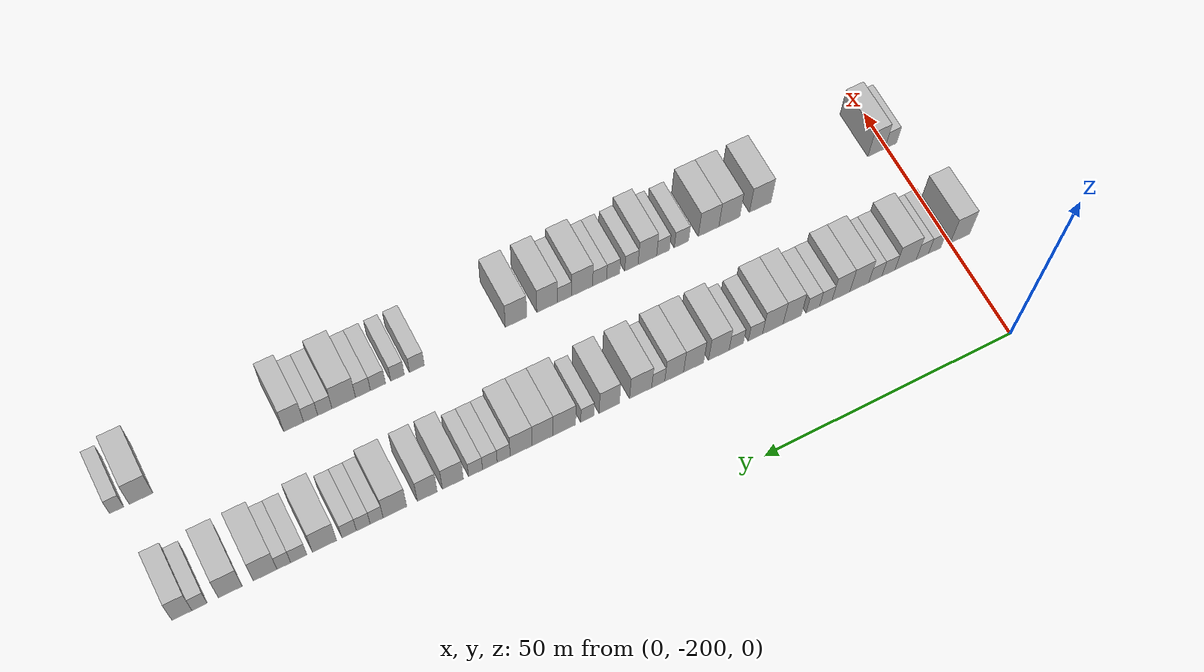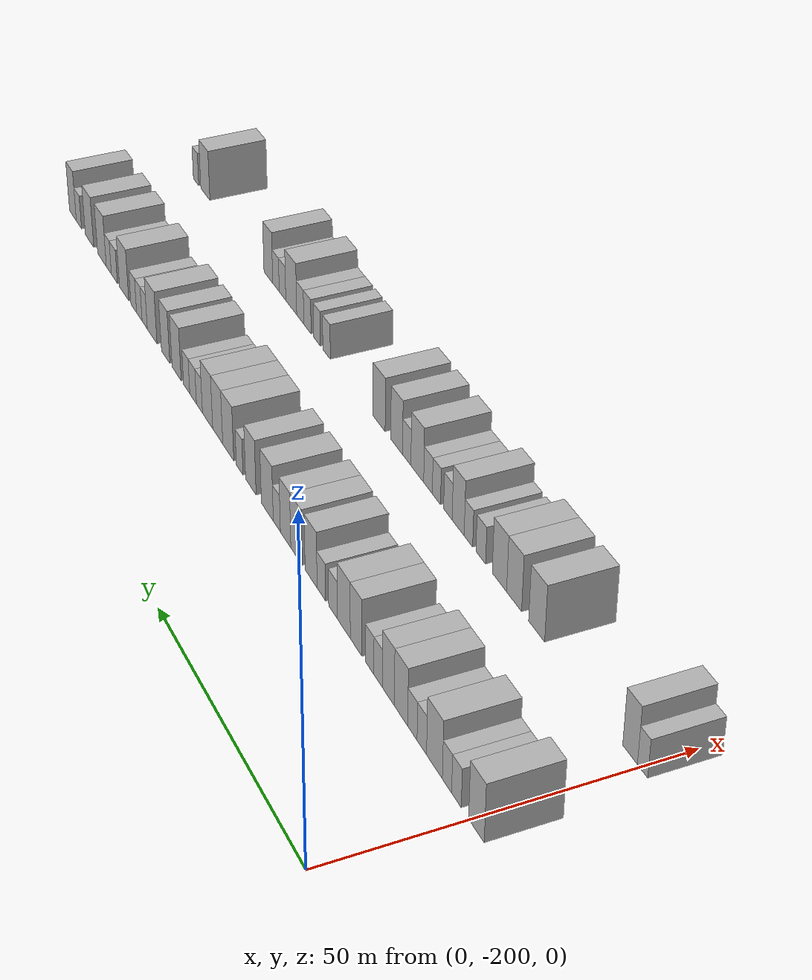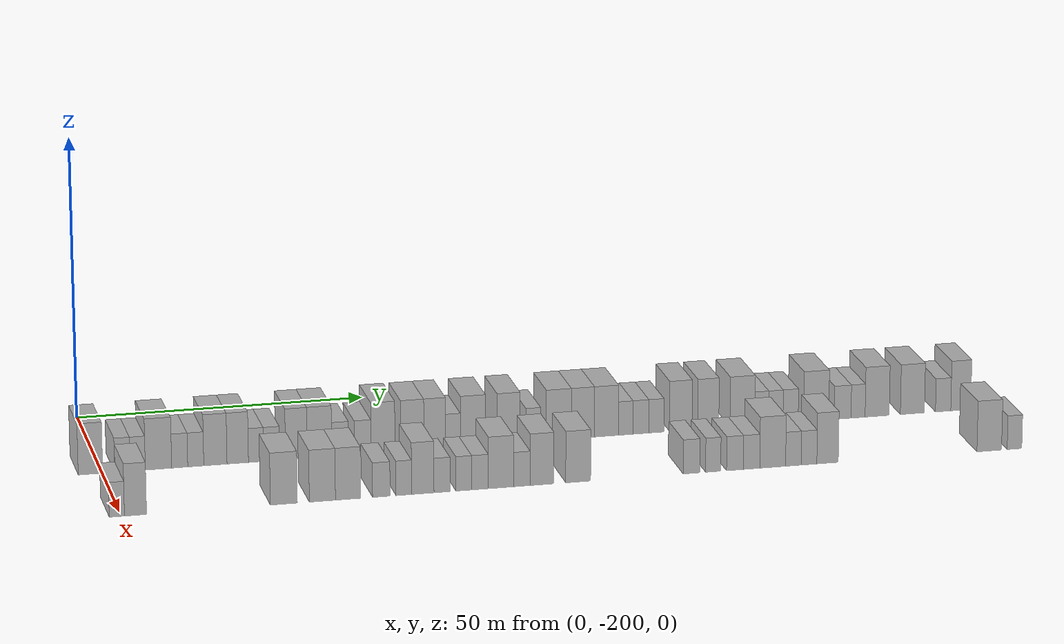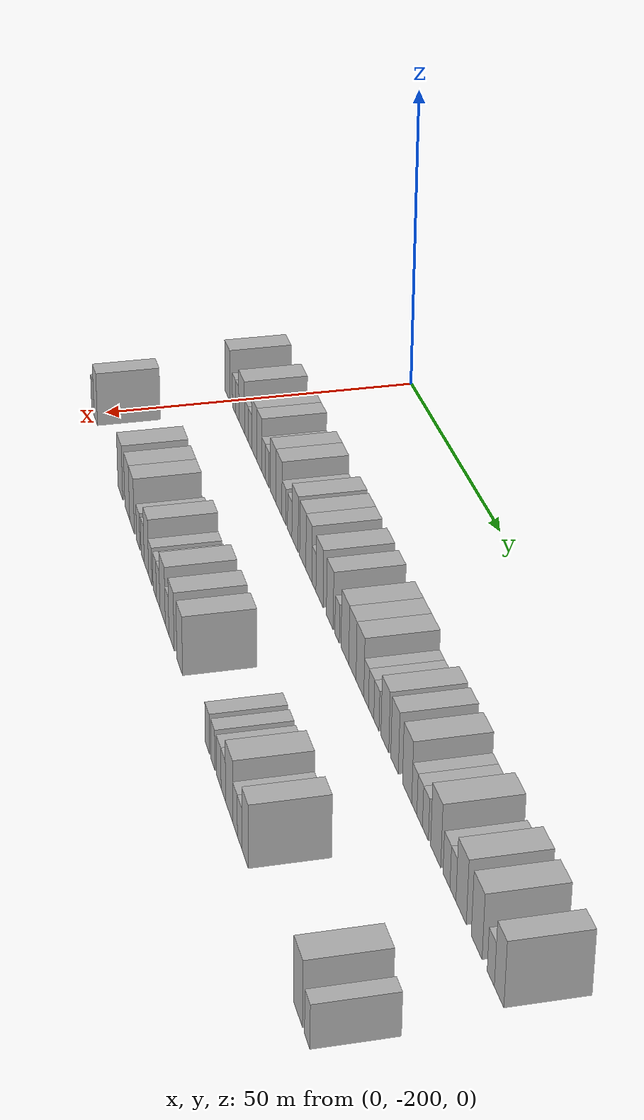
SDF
<sdf version="1.6">
 <world name="default">
  <model name="building_1">
   <static>1</static>
   <pose>25.0000 -201.9423 0 0.000000 0.000000 0.000000</pose>
   <link name="link">
    <pose>0 0 4.50 0 0 0</pose>
    <collision name="collision"><geometry><box><size>10.0000 4.1153 9.0000</size></box></geometry></collision>
    <visual name="visual">
     <cast_shadows>0</cast_shadows>
     <geometry><box><size>10.0000 4.1153 9.0000</size></box></geometry>
     <material>
      <script>
       <uri>model://HANNAS_wall/materials/scripts</uri>
       <uri>model://HANNAS_wall/materials/textures</uri>
       <name>vrc/HANNAS_wall</name>
      </script>
     </material>
    </visual>
   </link>
  </model>
  <model name="building_2">
   <static>1</static>
   <pose>25.0000 -196.5770 0 0.000000 0.000000 0.000000</pose>
   <link name="link">
    <pose>0 0 3.00 0 0 0</pose>
    <collision name="collision"><geometry><box><size>10.0000 2.6154 6.0000</size></box></geometry></collision>
    <visual name="visual">
     <cast_shadows>0</cast_shadows>
     <geometry><box><size>10.0000 2.6154 6.0000</size></box></geometry>
     <material>
      <script>
       <uri>model://HANNAS_wall/materials/scripts</uri>
       <uri>model://HANNAS_wall/materials/textures</uri>
       <name>vrc/HANNAS_wall</name>
      </script>
     </material>
    </visual>
   </link>
  </model>
  <model name="building_3">
   <static>1</static>
   <pose>25.0000 -193.9902 0 0.000000 0.000000 0.000000</pose>
   <link name="link">
    <pose>0 0 3.00 0 0 0</pose>
    <collision name="collision"><geometry><box><size>10.0000 2.5582 6.0000</size></box></geometry></collision>
    <visual name="visual">
     <cast_shadows>0</cast_shadows>
     <geometry><box><size>10.0000 2.5582 6.0000</size></box></geometry>
     <material>
      <script>
       <uri>model://HANNAS_wall/materials/scripts</uri>
       <uri>model://HANNAS_wall/materials/textures</uri>
       <name>vrc/HANNAS_wall</name>
      </script>
     </material>
    </visual>
   </link>
  </model>
  <model name="building_4">
   <static>1</static>
   <pose>25.0000 -190.4837 0 0.000000 0.000000 0.000000</pose>
   <link name="link">
    <pose>0 0 4.50 0 0 0</pose>
    <collision name="collision"><geometry><box><size>10.0000 4.4548 9.0000</size></box></geometry></collision>
    <visual name="visual">
     <cast_shadows>0</cast_shadows>
     <geometry><box><size>10.0000 4.4548 9.0000</size></box></geometry>
     <material>
      <script>
       <uri>model://HANNAS_wall/materials/scripts</uri>
       <uri>model://HANNAS_wall/materials/textures</uri>
       <name>vrc/HANNAS_wall</name>
      </script>
     </material>
    </visual>
   </link>
  </model>
  <model name="building_5">
   <static>1</static>
   <pose>25.0000 -186.8945 0 0.000000 0.000000 0.000000</pose>
   <link name="link">
    <pose>0 0 3.00 0 0 0</pose>
    <collision name="collision"><geometry><box><size>10.0000 2.7236 6.0000</size></box></geometry></collision>
    <visual name="visual">
     <cast_shadows>0</cast_shadows>
     <geometry><box><size>10.0000 2.7236 6.0000</size></box></geometry>
     <material>
      <script>
       <uri>model://HANNAS_wall/materials/scripts</uri>
       <uri>model://HANNAS_wall/materials/textures</uri>
       <name>vrc/HANNAS_wall</name>
      </script>
     </material>
    </visual>
   </link>
  </model>
  <model name="building_6">
   <static>1</static>
   <pose>25.0000 -184.1751 0 0.000000 0.000000 0.000000</pose>
   <link name="link">
    <pose>0 0 3.00 0 0 0</pose>
    <collision name="collision"><geometry><box><size>10.0000 2.7152 6.0000</size></box></geometry></collision>
    <visual name="visual">
     <cast_shadows>0</cast_shadows>
     <geometry><box><size>10.0000 2.7152 6.0000</size></box></geometry>
     <material>
      <script>
       <uri>model://HANNAS_wall/materials/scripts</uri>
       <uri>model://HANNAS_wall/materials/textures</uri>
       <name>vrc/HANNAS_wall</name>
      </script>
     </material>
    </visual>
   </link>
  </model>
  <model name="building_7">
   <static>1</static>
   <pose>25.0000 -180.8436 0 0.000000 0.000000 0.000000</pose>
   <link name="link">
    <pose>0 0 4.50 0 0 0</pose>
    <collision name="collision"><geometry><box><size>10.0000 3.9480 9.0000</size></box></geometry></collision>
    <visual name="visual">
     <cast_shadows>0</cast_shadows>
     <geometry><box><size>10.0000 3.9480 9.0000</size></box></geometry>
     <material>
      <script>
       <uri>model://HANNAS_wall/materials/scripts</uri>
       <uri>model://HANNAS_wall/materials/textures</uri>
       <name>vrc/HANNAS_wall</name>
      </script>
     </material>
    </visual>
   </link>
  </model>
  <model name="building_8">
   <static>1</static>
   <pose>25.0000 -177.0454 0 0.000000 0.000000 0.000000</pose>
   <link name="link">
    <pose>0 0 4.50 0 0 0</pose>
    <collision name="collision"><geometry><box><size>10.0000 3.6483 9.0000</size></box></geometry></collision>
    <visual name="visual">
     <cast_shadows>0</cast_shadows>
     <geometry><box><size>10.0000 3.6483 9.0000</size></box></geometry>
     <material>
      <script>
       <uri>model://HANNAS_wall/materials/scripts</uri>
       <uri>model://HANNAS_wall/materials/textures</uri>
       <name>vrc/HANNAS_wall</name>
      </script>
     </material>
    </visual>
   </link>
  </model>
  <model name="building_9">
   <static>1</static>
   <pose>25.0000 -173.9322 0 0.000000 0.000000 0.000000</pose>
   <link name="link">
    <pose>0 0 3.00 0 0 0</pose>
    <collision name="collision"><geometry><box><size>10.0000 2.5782 6.0000</size></box></geometry></collision>
    <visual name="visual">
     <cast_shadows>0</cast_shadows>
     <geometry><box><size>10.0000 2.5782 6.0000</size></box></geometry>
     <material>
      <script>
       <uri>model://HANNAS_wall/materials/scripts</uri>
       <uri>model://HANNAS_wall/materials/textures</uri>
       <name>vrc/HANNAS_wall</name>
      </script>
     </material>
    </visual>
   </link>
  </model>
  <model name="building_10">
   <static>1</static>
   <pose>25.0000 -171.2739 0 0.000000 0.000000 0.000000</pose>
   <link name="link">
    <pose>0 0 3.00 0 0 0</pose>
    <collision name="collision"><geometry><box><size>10.0000 2.7384 6.0000</size></box></geometry></collision>
    <visual name="visual">
     <cast_shadows>0</cast_shadows>
     <geometry><box><size>10.0000 2.7384 6.0000</size></box></geometry>
     <material>
      <script>
       <uri>model://HANNAS_wall/materials/scripts</uri>
       <uri>model://HANNAS_wall/materials/textures</uri>
       <name>vrc/HANNAS_wall</name>
      </script>
     </material>
    </visual>
   </link>
  </model>
  <model name="building_11">
   <static>1</static>
   <pose>25.0000 -167.0471 0 0.000000 0.000000 0.000000</pose>
   <link name="link">
    <pose>0 0 4.50 0 0 0</pose>
    <collision name="collision"><geometry><box><size>10.0000 3.7153 9.0000</size></box></geometry></collision>
    <visual name="visual">
     <cast_shadows>0</cast_shadows>
     <geometry><box><size>10.0000 3.7153 9.0000</size></box></geometry>
     <material>
      <script>
       <uri>model://HANNAS_wall/materials/scripts</uri>
       <uri>model://HANNAS_wall/materials/textures</uri>
       <name>vrc/HANNAS_wall</name>
      </script>
     </material>
    </visual>
   </link>
  </model>
  <model name="building_12">
   <static>1</static>
   <pose>25.0000 -163.0891 0 0.000000 0.000000 0.000000</pose>
   <link name="link">
    <pose>0 0 4.50 0 0 0</pose>
    <collision name="collision"><geometry><box><size>10.0000 4.2007 9.0000</size></box></geometry></collision>
    <visual name="visual">
     <cast_shadows>0</cast_shadows>
     <geometry><box><size>10.0000 4.2007 9.0000</size></box></geometry>
     <material>
      <script>
       <uri>model://HANNAS_wall/materials/scripts</uri>
       <uri>model://HANNAS_wall/materials/textures</uri>
       <name>vrc/HANNAS_wall</name>
      </script>
     </material>
    </visual>
   </link>
  </model>
  <model name="building_13">
   <static>1</static>
   <pose>25.0000 -159.5519 0 0.000000 0.000000 0.000000</pose>
   <link name="link">
    <pose>0 0 3.00 0 0 0</pose>
    <collision name="collision"><geometry><box><size>10.0000 2.8738 6.0000</size></box></geometry></collision>
    <visual name="visual">
     <cast_shadows>0</cast_shadows>
     <geometry><box><size>10.0000 2.8738 6.0000</size></box></geometry>
     <material>
      <script>
       <uri>model://HANNAS_wall/materials/scripts</uri>
       <uri>model://HANNAS_wall/materials/textures</uri>
       <name>vrc/HANNAS_wall</name>
      </script>
     </material>
    </visual>
   </link>
  </model>
  <model name="building_14">
   <static>1</static>
   <pose>25.0000 -155.6777 0 0.000000 0.000000 0.000000</pose>
   <link name="link">
    <pose>0 0 3.00 0 0 0</pose>
    <collision name="collision"><geometry><box><size>10.0000 2.8745 6.0000</size></box></geometry></collision>
    <visual name="visual">
     <cast_shadows>0</cast_shadows>
     <geometry><box><size>10.0000 2.8745 6.0000</size></box></geometry>
     <material>
      <script>
       <uri>model://HANNAS_wall/materials/scripts</uri>
       <uri>model://HANNAS_wall/materials/textures</uri>
       <name>vrc/HANNAS_wall</name>
      </script>
     </material>
    </visual>
   </link>
  </model>
  <model name="building_15">
   <static>1</static>
   <pose>25.0000 -152.1802 0 0.000000 0.000000 0.000000</pose>
   <link name="link">
    <pose>0 0 4.50 0 0 0</pose>
    <collision name="collision"><geometry><box><size>10.0000 4.1206 9.0000</size></box></geometry></collision>
    <visual name="visual">
     <cast_shadows>0</cast_shadows>
     <geometry><box><size>10.0000 4.1206 9.0000</size></box></geometry>
     <material>
      <script>
       <uri>model://HANNAS_wall/materials/scripts</uri>
       <uri>model://HANNAS_wall/materials/textures</uri>
       <name>vrc/HANNAS_wall</name>
      </script>
     </material>
    </visual>
   </link>
  </model>
  <model name="building_16">
   <static>1</static>
   <pose>25.0000 -147.1209 0 0.000000 0.000000 0.000000</pose>
   <link name="link">
    <pose>0 0 4.50 0 0 0</pose>
    <collision name="collision"><geometry><box><size>10.0000 3.9980 9.0000</size></box></geometry></collision>
    <visual name="visual">
     <cast_shadows>0</cast_shadows>
     <geometry><box><size>10.0000 3.9980 9.0000</size></box></geometry>
     <material>
      <script>
       <uri>model://HANNAS_wall/materials/scripts</uri>
       <uri>model://HANNAS_wall/materials/textures</uri>
       <name>vrc/HANNAS_wall</name>
      </script>
     </material>
    </visual>
   </link>
  </model>
  <model name="building_17">
   <static>1</static>
   <pose>25.0000 -143.2498 0 0.000000 0.000000 0.000000</pose>
   <link name="link">
    <pose>0 0 4.50 0 0 0</pose>
    <collision name="collision"><geometry><box><size>10.0000 3.7441 9.0000</size></box></geometry></collision>
    <visual name="visual">
     <cast_shadows>0</cast_shadows>
     <geometry><box><size>10.0000 3.7441 9.0000</size></box></geometry>
     <material>
      <script>
       <uri>model://HANNAS_wall/materials/scripts</uri>
       <uri>model://HANNAS_wall/materials/textures</uri>
       <name>vrc/HANNAS_wall</name>
      </script>
     </material>
    </visual>
   </link>
  </model>
  <model name="building_18">
   <static>1</static>
   <pose>25.0000 -140.0889 0 0.000000 0.000000 0.000000</pose>
   <link name="link">
    <pose>0 0 3.00 0 0 0</pose>
    <collision name="collision"><geometry><box><size>10.0000 2.5777 6.0000</size></box></geometry></collision>
    <visual name="visual">
     <cast_shadows>0</cast_shadows>
     <geometry><box><size>10.0000 2.5777 6.0000</size></box></geometry>
     <material>
      <script>
       <uri>model://HANNAS_wall/materials/scripts</uri>
       <uri>model://HANNAS_wall/materials/textures</uri>
       <name>vrc/HANNAS_wall</name>
      </script>
     </material>
    </visual>
   </link>
  </model>
  <model name="building_19">
   <static>1</static>
   <pose>25.0000 -136.6142 0 0.000000 0.000000 0.000000</pose>
   <link name="link">
    <pose>0 0 4.50 0 0 0</pose>
    <collision name="collision"><geometry><box><size>10.0000 4.3716 9.0000</size></box></geometry></collision>
    <visual name="visual">
     <cast_shadows>0</cast_shadows>
     <geometry><box><size>10.0000 4.3716 9.0000</size></box></geometry>
     <material>
      <script>
       <uri>model://HANNAS_wall/materials/scripts</uri>
       <uri>model://HANNAS_wall/materials/textures</uri>
       <name>vrc/HANNAS_wall</name>
      </script>
     </material>
    </visual>
   </link>
  </model>
  <model name="building_20">
   <static>1</static>
   <pose>25.0000 -130.4317 0 0.000000 0.000000 0.000000</pose>
   <link name="link">
    <pose>0 0 4.50 0 0 0</pose>
    <collision name="collision"><geometry><box><size>10.0000 3.9935 9.0000</size></box></geometry></collision>
    <visual name="visual">
     <cast_shadows>0</cast_shadows>
     <geometry><box><size>10.0000 3.9935 9.0000</size></box></geometry>
     <material>
      <script>
       <uri>model://HANNAS_wall/materials/scripts</uri>
       <uri>model://HANNAS_wall/materials/textures</uri>
       <name>vrc/HANNAS_wall</name>
      </script>
     </material>
    </visual>
   </link>
  </model>
  <model name="building_21">
   <static>1</static>
   <pose>25.0000 -126.1475 0 0.000000 0.000000 0.000000</pose>
   <link name="link">
    <pose>0 0 3.00 0 0 0</pose>
    <collision name="collision"><geometry><box><size>10.0000 2.5748 6.0000</size></box></geometry></collision>
    <visual name="visual">
     <cast_shadows>0</cast_shadows>
     <geometry><box><size>10.0000 2.5748 6.0000</size></box></geometry>
     <material>
      <script>
       <uri>model://HANNAS_wall/materials/scripts</uri>
       <uri>model://HANNAS_wall/materials/textures</uri>
       <name>vrc/HANNAS_wall</name>
      </script>
     </material>
    </visual>
   </link>
  </model>
  <model name="building_22">
   <static>1</static>
   <pose>25.0000 -121.6800 0 0.000000 0.000000 0.000000</pose>
   <link name="link">
    <pose>0 0 4.50 0 0 0</pose>
    <collision name="collision"><geometry><box><size>10.0000 4.3604 9.0000</size></box></geometry></collision>
    <visual name="visual">
     <cast_shadows>0</cast_shadows>
     <geometry><box><size>10.0000 4.3604 9.0000</size></box></geometry>
     <material>
      <script>
       <uri>model://HANNAS_wall/materials/scripts</uri>
       <uri>model://HANNAS_wall/materials/textures</uri>
       <name>vrc/HANNAS_wall</name>
      </script>
     </material>
    </visual>
   </link>
  </model>
  <model name="building_23">
   <static>1</static>
   <pose>25.0000 -117.4718 0 0.000000 0.000000 0.000000</pose>
   <link name="link">
    <pose>0 0 4.50 0 0 0</pose>
    <collision name="collision"><geometry><box><size>10.0000 4.0561 9.0000</size></box></geometry></collision>
    <visual name="visual">
     <cast_shadows>0</cast_shadows>
     <geometry><box><size>10.0000 4.0561 9.0000</size></box></geometry>
     <material>
      <script>
       <uri>model://HANNAS_wall/materials/scripts</uri>
       <uri>model://HANNAS_wall/materials/textures</uri>
       <name>vrc/HANNAS_wall</name>
      </script>
     </material>
    </visual>
   </link>
  </model>
  <model name="building_24">
   <static>1</static>
   <pose>25.0000 -113.3345 0 0.000000 0.000000 0.000000</pose>
   <link name="link">
    <pose>0 0 4.50 0 0 0</pose>
    <collision name="collision"><geometry><box><size>10.0000 4.2184 9.0000</size></box></geometry></collision>
    <visual name="visual">
     <cast_shadows>0</cast_shadows>
     <geometry><box><size>10.0000 4.2184 9.0000</size></box></geometry>
     <material>
      <script>
       <uri>model://HANNAS_wall/materials/scripts</uri>
       <uri>model://HANNAS_wall/materials/textures</uri>
       <name>vrc/HANNAS_wall</name>
      </script>
     </material>
    </visual>
   </link>
  </model>
  <model name="building_25">
   <static>1</static>
   <pose>25.0000 -109.9702 0 0.000000 0.000000 0.000000</pose>
   <link name="link">
    <pose>0 0 3.00 0 0 0</pose>
    <collision name="collision"><geometry><box><size>10.0000 2.5103 6.0000</size></box></geometry></collision>
    <visual name="visual">
     <cast_shadows>0</cast_shadows>
     <geometry><box><size>10.0000 2.5103 6.0000</size></box></geometry>
     <material>
      <script>
       <uri>model://HANNAS_wall/materials/scripts</uri>
       <uri>model://HANNAS_wall/materials/textures</uri>
       <name>vrc/HANNAS_wall</name>
      </script>
     </material>
    </visual>
   </link>
  </model>
  <model name="building_26">
   <static>1</static>
   <pose>25.0000 -107.3173 0 0.000000 0.000000 0.000000</pose>
   <link name="link">
    <pose>0 0 3.00 0 0 0</pose>
    <collision name="collision"><geometry><box><size>10.0000 2.7954 6.0000</size></box></geometry></collision>
    <visual name="visual">
     <cast_shadows>0</cast_shadows>
     <geometry><box><size>10.0000 2.7954 6.0000</size></box></geometry>
     <material>
      <script>
       <uri>model://HANNAS_wall/materials/scripts</uri>
       <uri>model://HANNAS_wall/materials/textures</uri>
       <name>vrc/HANNAS_wall</name>
      </script>
     </material>
    </visual>
   </link>
  </model>
  <model name="building_27">
   <static>1</static>
   <pose>25.0000 -104.5881 0 0.000000 0.000000 0.000000</pose>
   <link name="link">
    <pose>0 0 3.00 0 0 0</pose>
    <collision name="collision"><geometry><box><size>10.0000 2.6630 6.0000</size></box></geometry></collision>
    <visual name="visual">
     <cast_shadows>0</cast_shadows>
     <geometry><box><size>10.0000 2.6630 6.0000</size></box></geometry>
     <material>
      <script>
       <uri>model://HANNAS_wall/materials/scripts</uri>
       <uri>model://HANNAS_wall/materials/textures</uri>
       <name>vrc/HANNAS_wall</name>
      </script>
     </material>
    </visual>
   </link>
  </model>
  <model name="building_28">
   <static>1</static>
   <pose>25.0000 -100.2743 0 0.000000 0.000000 0.000000</pose>
   <link name="link">
    <pose>0 0 4.50 0 0 0</pose>
    <collision name="collision"><geometry><box><size>10.0000 3.9646 9.0000</size></box></geometry></collision>
    <visual name="visual">
     <cast_shadows>0</cast_shadows>
     <geometry><box><size>10.0000 3.9646 9.0000</size></box></geometry>
     <material>
      <script>
       <uri>model://HANNAS_wall/materials/scripts</uri>
       <uri>model://HANNAS_wall/materials/textures</uri>
       <name>vrc/HANNAS_wall</name>
      </script>
     </material>
    </visual>
   </link>
  </model>
  <model name="building_29">
   <static>1</static>
   <pose>25.0000 -95.4262 0 0.000000 0.000000 0.000000</pose>
   <link name="link">
    <pose>0 0 4.50 0 0 0</pose>
    <collision name="collision"><geometry><box><size>10.0000 3.7315 9.0000</size></box></geometry></collision>
    <visual name="visual">
     <cast_shadows>0</cast_shadows>
     <geometry><box><size>10.0000 3.7315 9.0000</size></box></geometry>
     <material>
      <script>
       <uri>model://HANNAS_wall/materials/scripts</uri>
       <uri>model://HANNAS_wall/materials/textures</uri>
       <name>vrc/HANNAS_wall</name>
      </script>
     </material>
    </visual>
   </link>
  </model>
  <model name="building_30">
   <static>1</static>
   <pose>25.0000 -89.3529 0 0.000000 0.000000 0.000000</pose>
   <link name="link">
    <pose>0 0 4.50 0 0 0</pose>
    <collision name="collision"><geometry><box><size>10.0000 4.4151 9.0000</size></box></geometry></collision>
    <visual name="visual">
     <cast_shadows>0</cast_shadows>
     <geometry><box><size>10.0000 4.4151 9.0000</size></box></geometry>
     <material>
      <script>
       <uri>model://HANNAS_wall/materials/scripts</uri>
       <uri>model://HANNAS_wall/materials/textures</uri>
       <name>vrc/HANNAS_wall</name>
      </script>
     </material>
    </visual>
   </link>
  </model>
  <model name="building_31">
   <static>1</static>
   <pose>25.0000 -85.9377 0 0.000000 0.000000 0.000000</pose>
   <link name="link">
    <pose>0 0 3.00 0 0 0</pose>
    <collision name="collision"><geometry><box><size>10.0000 2.4154 6.0000</size></box></geometry></collision>
    <visual name="visual">
     <cast_shadows>0</cast_shadows>
     <geometry><box><size>10.0000 2.4154 6.0000</size></box></geometry>
     <material>
      <script>
       <uri>model://HANNAS_wall/materials/scripts</uri>
       <uri>model://HANNAS_wall/materials/textures</uri>
       <name>vrc/HANNAS_wall</name>
      </script>
     </material>
    </visual>
   </link>
  </model>
  <model name="building_32">
   <static>1</static>
   <pose>25.0000 -83.4463 0 0.000000 0.000000 0.000000</pose>
   <link name="link">
    <pose>0 0 3.00 0 0 0</pose>
    <collision name="collision"><geometry><box><size>10.0000 2.5673 6.0000</size></box></geometry></collision>
    <visual name="visual">
     <cast_shadows>0</cast_shadows>
     <geometry><box><size>10.0000 2.5673 6.0000</size></box></geometry>
     <material>
      <script>
       <uri>model://HANNAS_wall/materials/scripts</uri>
       <uri>model://HANNAS_wall/materials/textures</uri>
       <name>vrc/HANNAS_wall</name>
      </script>
     </material>
    </visual>
   </link>
  </model>
  <model name="building_33">
   <static>1</static>
   <pose>25.0000 -80.8120 0 0.000000 0.000000 0.000000</pose>
   <link name="link">
    <pose>0 0 3.00 0 0 0</pose>
    <collision name="collision"><geometry><box><size>10.0000 2.7014 6.0000</size></box></geometry></collision>
    <visual name="visual">
     <cast_shadows>0</cast_shadows>
     <geometry><box><size>10.0000 2.7014 6.0000</size></box></geometry>
     <material>
      <script>
       <uri>model://HANNAS_wall/materials/scripts</uri>
       <uri>model://HANNAS_wall/materials/textures</uri>
       <name>vrc/HANNAS_wall</name>
      </script>
     </material>
    </visual>
   </link>
  </model>
  <model name="building_34">
   <static>1</static>
   <pose>25.0000 -76.2308 0 0.000000 0.000000 0.000000</pose>
   <link name="link">
    <pose>0 0 4.50 0 0 0</pose>
    <collision name="collision"><geometry><box><size>10.0000 4.4610 9.0000</size></box></geometry></collision>
    <visual name="visual">
     <cast_shadows>0</cast_shadows>
     <geometry><box><size>10.0000 4.4610 9.0000</size></box></geometry>
     <material>
      <script>
       <uri>model://HANNAS_wall/materials/scripts</uri>
       <uri>model://HANNAS_wall/materials/textures</uri>
       <name>vrc/HANNAS_wall</name>
      </script>
     </material>
    </visual>
   </link>
  </model>
  <model name="building_35">
   <static>1</static>
   <pose>25.0000 -71.5075 0 0.000000 0.000000 0.000000</pose>
   <link name="link">
    <pose>0 0 3.00 0 0 0</pose>
    <collision name="collision"><geometry><box><size>10.0000 2.9858 6.0000</size></box></geometry></collision>
    <visual name="visual">
     <cast_shadows>0</cast_shadows>
     <geometry><box><size>10.0000 2.9858 6.0000</size></box></geometry>
     <material>
      <script>
       <uri>model://HANNAS_wall/materials/scripts</uri>
       <uri>model://HANNAS_wall/materials/textures</uri>
       <name>vrc/HANNAS_wall</name>
      </script>
     </material>
    </visual>
   </link>
  </model>
  <model name="building_36">
   <static>1</static>
   <pose>25.0000 -68.7526 0 0.000000 0.000000 0.000000</pose>
   <link name="link">
    <pose>0 0 3.00 0 0 0</pose>
    <collision name="collision"><geometry><box><size>10.0000 2.5241 6.0000</size></box></geometry></collision>
    <visual name="visual">
     <cast_shadows>0</cast_shadows>
     <geometry><box><size>10.0000 2.5241 6.0000</size></box></geometry>
     <material>
      <script>
       <uri>model://HANNAS_wall/materials/scripts</uri>
       <uri>model://HANNAS_wall/materials/textures</uri>
       <name>vrc/HANNAS_wall</name>
      </script>
     </material>
    </visual>
   </link>
  </model>
  <model name="building_37">
   <static>1</static>
   <pose>25.0000 -65.3271 0 0.000000 0.000000 0.000000</pose>
   <link name="link">
    <pose>0 0 4.50 0 0 0</pose>
    <collision name="collision"><geometry><box><size>10.0000 4.3268 9.0000</size></box></geometry></collision>
    <visual name="visual">
     <cast_shadows>0</cast_shadows>
     <geometry><box><size>10.0000 4.3268 9.0000</size></box></geometry>
     <material>
      <script>
       <uri>model://HANNAS_wall/materials/scripts</uri>
       <uri>model://HANNAS_wall/materials/textures</uri>
       <name>vrc/HANNAS_wall</name>
      </script>
     </material>
    </visual>
   </link>
  </model>
  <model name="building_38">
   <static>1</static>
   <pose>25.0000 -58.9984 0 0.000000 0.000000 0.000000</pose>
   <link name="link">
    <pose>0 0 4.50 0 0 0</pose>
    <collision name="collision"><geometry><box><size>10.0000 4.3307 9.0000</size></box></geometry></collision>
    <visual name="visual">
     <cast_shadows>0</cast_shadows>
     <geometry><box><size>10.0000 4.3307 9.0000</size></box></geometry>
     <material>
      <script>
       <uri>model://HANNAS_wall/materials/scripts</uri>
       <uri>model://HANNAS_wall/materials/textures</uri>
       <name>vrc/HANNAS_wall</name>
      </script>
     </material>
    </visual>
   </link>
  </model>
  <model name="building_39">
   <static>1</static>
   <pose>25.0000 -53.4522 0 0.000000 0.000000 0.000000</pose>
   <link name="link">
    <pose>0 0 3.00 0 0 0</pose>
    <collision name="collision"><geometry><box><size>10.0000 2.7616 6.0000</size></box></geometry></collision>
    <visual name="visual">
     <cast_shadows>0</cast_shadows>
     <geometry><box><size>10.0000 2.7616 6.0000</size></box></geometry>
     <material>
      <script>
       <uri>model://HANNAS_wall/materials/scripts</uri>
       <uri>model://HANNAS_wall/materials/textures</uri>
       <name>vrc/HANNAS_wall</name>
      </script>
     </material>
    </visual>
   </link>
  </model>
  <model name="building_40">
   <static>1</static>
   <pose>25.0000 -50.2697 0 0.000000 0.000000 0.000000</pose>
   <link name="link">
    <pose>0 0 4.50 0 0 0</pose>
    <collision name="collision"><geometry><box><size>10.0000 3.6035 9.0000</size></box></geometry></collision>
    <visual name="visual">
     <cast_shadows>0</cast_shadows>
     <geometry><box><size>10.0000 3.6035 9.0000</size></box></geometry>
     <material>
      <script>
       <uri>model://HANNAS_wall/materials/scripts</uri>
       <uri>model://HANNAS_wall/materials/textures</uri>
       <name>vrc/HANNAS_wall</name>
      </script>
     </material>
    </visual>
   </link>
  </model>
  <model name="building_102">
   <static>1</static>
   <pose>47.0000 -200.7507 0 0.000000 0.000000 0.000000</pose>
   <link name="link">
    <pose>0 0 3.00 0 0 0</pose>
    <collision name="collision"><geometry><box><size>10.0000 2.4986 6.0000</size></box></geometry></collision>
    <visual name="visual">
     <cast_shadows>0</cast_shadows>
     <geometry><box><size>10.0000 2.4986 6.0000</size></box></geometry>
     <material>
      <script>
       <uri>model://HANNAS_wall/materials/scripts</uri>
       <uri>model://HANNAS_wall/materials/textures</uri>
       <name>vrc/HANNAS_wall</name>
      </script>
     </material>
    </visual>
   </link>
  </model>
  <model name="building_103">
   <static>1</static>
   <pose>47.0000 -197.6840 0 0.000000 0.000000 0.000000</pose>
   <link name="link">
    <pose>0 0 4.50 0 0 0</pose>
    <collision name="collision"><geometry><box><size>10.0000 3.6348 9.0000</size></box></geometry></collision>
    <visual name="visual">
     <cast_shadows>0</cast_shadows>
     <geometry><box><size>10.0000 3.6348 9.0000</size></box></geometry>
     <material>
      <script>
       <uri>model://HANNAS_wall/materials/scripts</uri>
       <uri>model://HANNAS_wall/materials/textures</uri>
       <name>vrc/HANNAS_wall</name>
      </script>
     </material>
    </visual>
   </link>
  </model>
  <model name="building_104">
   <static>1</static>
   <pose>47.0000 -173.1184 0 0.000000 0.000000 0.000000</pose>
   <link name="link">
    <pose>0 0 4.50 0 0 0</pose>
    <collision name="collision"><geometry><box><size>10.0000 4.4988 9.0000</size></box></geometry></collision>
    <visual name="visual">
     <cast_shadows>0</cast_shadows>
     <geometry><box><size>10.0000 4.4988 9.0000</size></box></geometry>
     <material>
      <script>
       <uri>model://HANNAS_wall/materials/scripts</uri>
       <uri>model://HANNAS_wall/materials/textures</uri>
       <name>vrc/HANNAS_wall</name>
      </script>
     </material>
    </visual>
   </link>
  </model>
  <model name="building_105">
   <static>1</static>
   <pose>47.0000 -166.6890 0 0.000000 0.000000 0.000000</pose>
   <link name="link">
    <pose>0 0 4.50 0 0 0</pose>
    <collision name="collision"><geometry><box><size>10.0000 4.3599 9.0000</size></box></geometry></collision>
    <visual name="visual">
     <cast_shadows>0</cast_shadows>
     <geometry><box><size>10.0000 4.3599 9.0000</size></box></geometry>
     <material>
      <script>
       <uri>model://HANNAS_wall/materials/scripts</uri>
       <uri>model://HANNAS_wall/materials/textures</uri>
       <name>vrc/HANNAS_wall</name>
      </script>
     </material>
    </visual>
   </link>
  </model>
  <model name="building_106">
   <static>1</static>
   <pose>47.0000 -162.3958 0 0.000000 0.000000 0.000000</pose>
   <link name="link">
    <pose>0 0 4.50 0 0 0</pose>
    <collision name="collision"><geometry><box><size>10.0000 4.2266 9.0000</size></box></geometry></collision>
    <visual name="visual">
     <cast_shadows>0</cast_shadows>
     <geometry><box><size>10.0000 4.2266 9.0000</size></box></geometry>
     <material>
      <script>
       <uri>model://HANNAS_wall/materials/scripts</uri>
       <uri>model://HANNAS_wall/materials/textures</uri>
       <name>vrc/HANNAS_wall</name>
      </script>
     </material>
    </visual>
   </link>
  </model>
  <model name="building_107">
   <static>1</static>
   <pose>47.0000 -156.8168 0 0.000000 0.000000 0.000000</pose>
   <link name="link">
    <pose>0 0 3.00 0 0 0</pose>
    <collision name="collision"><geometry><box><size>10.0000 2.9313 6.0000</size></box></geometry></collision>
    <visual name="visual">
     <cast_shadows>0</cast_shadows>
     <geometry><box><size>10.0000 2.9313 6.0000</size></box></geometry>
     <material>
      <script>
       <uri>model://HANNAS_wall/materials/scripts</uri>
       <uri>model://HANNAS_wall/materials/textures</uri>
       <name>vrc/HANNAS_wall</name>
      </script>
     </material>
    </visual>
   </link>
  </model>
  <model name="building_108">
   <static>1</static>
   <pose>47.0000 -153.0401 0 0.000000 0.000000 0.000000</pose>
   <link name="link">
    <pose>0 0 3.00 0 0 0</pose>
    <collision name="collision"><geometry><box><size>10.0000 2.6222 6.0000</size></box></geometry></collision>
    <visual name="visual">
     <cast_shadows>0</cast_shadows>
     <geometry><box><size>10.0000 2.6222 6.0000</size></box></geometry>
     <material>
      <script>
       <uri>model://HANNAS_wall/materials/scripts</uri>
       <uri>model://HANNAS_wall/materials/textures</uri>
       <name>vrc/HANNAS_wall</name>
      </script>
     </material>
    </visual>
   </link>
  </model>
  <model name="building_109">
   <static>1</static>
   <pose>47.0000 -149.8404 0 0.000000 0.000000 0.000000</pose>
   <link name="link">
    <pose>0 0 4.50 0 0 0</pose>
    <collision name="collision"><geometry><box><size>10.0000 3.7773 9.0000</size></box></geometry></collision>
    <visual name="visual">
     <cast_shadows>0</cast_shadows>
     <geometry><box><size>10.0000 3.7773 9.0000</size></box></geometry>
     <material>
      <script>
       <uri>model://HANNAS_wall/materials/scripts</uri>
       <uri>model://HANNAS_wall/materials/textures</uri>
       <name>vrc/HANNAS_wall</name>
      </script>
     </material>
    </visual>
   </link>
  </model>
  <model name="building_110">
   <static>1</static>
   <pose>47.0000 -146.5951 0 0.000000 0.000000 0.000000</pose>
   <link name="link">
    <pose>0 0 3.00 0 0 0</pose>
    <collision name="collision"><geometry><box><size>10.0000 2.7133 6.0000</size></box></geometry></collision>
    <visual name="visual">
     <cast_shadows>0</cast_shadows>
     <geometry><box><size>10.0000 2.7133 6.0000</size></box></geometry>
     <material>
      <script>
       <uri>model://HANNAS_wall/materials/scripts</uri>
       <uri>model://HANNAS_wall/materials/textures</uri>
       <name>vrc/HANNAS_wall</name>
      </script>
     </material>
    </visual>
   </link>
  </model>
  <model name="building_111">
   <static>1</static>
   <pose>47.0000 -142.9128 0 0.000000 0.000000 0.000000</pose>
   <link name="link">
    <pose>0 0 3.00 0 0 0</pose>
    <collision name="collision"><geometry><box><size>10.0000 2.6513 6.0000</size></box></geometry></collision>
    <visual name="visual">
     <cast_shadows>0</cast_shadows>
     <geometry><box><size>10.0000 2.6513 6.0000</size></box></geometry>
     <material>
      <script>
       <uri>model://HANNAS_wall/materials/scripts</uri>
       <uri>model://HANNAS_wall/materials/textures</uri>
       <name>vrc/HANNAS_wall</name>
      </script>
     </material>
    </visual>
   </link>
  </model>
  <model name="building_112">
   <static>1</static>
   <pose>47.0000 -140.1637 0 0.000000 0.000000 0.000000</pose>
   <link name="link">
    <pose>0 0 3.00 0 0 0</pose>
    <collision name="collision"><geometry><box><size>10.0000 2.8468 6.0000</size></box></geometry></collision>
    <visual name="visual">
     <cast_shadows>0</cast_shadows>
     <geometry><box><size>10.0000 2.8468 6.0000</size></box></geometry>
     <material>
      <script>
       <uri>model://HANNAS_wall/materials/scripts</uri>
       <uri>model://HANNAS_wall/materials/textures</uri>
       <name>vrc/HANNAS_wall</name>
      </script>
     </material>
    </visual>
   </link>
  </model>
  <model name="building_113">
   <static>1</static>
   <pose>47.0000 -136.6075 0 0.000000 0.000000 0.000000</pose>
   <link name="link">
    <pose>0 0 4.50 0 0 0</pose>
    <collision name="collision"><geometry><box><size>10.0000 4.2656 9.0000</size></box></geometry></collision>
    <visual name="visual">
     <cast_shadows>0</cast_shadows>
     <geometry><box><size>10.0000 4.2656 9.0000</size></box></geometry>
     <material>
      <script>
       <uri>model://HANNAS_wall/materials/scripts</uri>
       <uri>model://HANNAS_wall/materials/textures</uri>
       <name>vrc/HANNAS_wall</name>
      </script>
     </material>
    </visual>
   </link>
  </model>
  <model name="building_114">
   <static>1</static>
   <pose>47.0000 -133.0593 0 0.000000 0.000000 0.000000</pose>
   <link name="link">
    <pose>0 0 3.00 0 0 0</pose>
    <collision name="collision"><geometry><box><size>10.0000 2.8308 6.0000</size></box></geometry></collision>
    <visual name="visual">
     <cast_shadows>0</cast_shadows>
     <geometry><box><size>10.0000 2.8308 6.0000</size></box></geometry>
     <material>
      <script>
       <uri>model://HANNAS_wall/materials/scripts</uri>
       <uri>model://HANNAS_wall/materials/textures</uri>
       <name>vrc/HANNAS_wall</name>
      </script>
     </material>
    </visual>
   </link>
  </model>
  <model name="building_115">
   <static>1</static>
   <pose>47.0000 -129.6234 0 0.000000 0.000000 0.000000</pose>
   <link name="link">
    <pose>0 0 4.50 0 0 0</pose>
    <collision name="collision"><geometry><box><size>10.0000 4.0409 9.0000</size></box></geometry></collision>
    <visual name="visual">
     <cast_shadows>0</cast_shadows>
     <geometry><box><size>10.0000 4.0409 9.0000</size></box></geometry>
     <material>
      <script>
       <uri>model://HANNAS_wall/materials/scripts</uri>
       <uri>model://HANNAS_wall/materials/textures</uri>
       <name>vrc/HANNAS_wall</name>
      </script>
     </material>
    </visual>
   </link>
  </model>
  <model name="building_116">
   <static>1</static>
   <pose>47.0000 -123.4810 0 0.000000 0.000000 0.000000</pose>
   <link name="link">
    <pose>0 0 4.50 0 0 0</pose>
    <collision name="collision"><geometry><box><size>10.0000 4.2439 9.0000</size></box></geometry></collision>
    <visual name="visual">
     <cast_shadows>0</cast_shadows>
     <geometry><box><size>10.0000 4.2439 9.0000</size></box></geometry>
     <material>
      <script>
       <uri>model://HANNAS_wall/materials/scripts</uri>
       <uri>model://HANNAS_wall/materials/textures</uri>
       <name>vrc/HANNAS_wall</name>
      </script>
     </material>
    </visual>
   </link>
  </model>
  <model name="building_117">
   <static>1</static>
   <pose>47.0000 -104.0487 0 0.000000 0.000000 0.000000</pose>
   <link name="link">
    <pose>0 0 3.00 0 0 0</pose>
    <collision name="collision"><geometry><box><size>10.0000 2.8736 6.0000</size></box></geometry></collision>
    <visual name="visual">
     <cast_shadows>0</cast_shadows>
     <geometry><box><size>10.0000 2.8736 6.0000</size></box></geometry>
     <material>
      <script>
       <uri>model://HANNAS_wall/materials/scripts</uri>
       <uri>model://HANNAS_wall/materials/textures</uri>
       <name>vrc/HANNAS_wall</name>
      </script>
     </material>
    </visual>
   </link>
  </model>
  <model name="building_118">
   <static>1</static>
   <pose>47.0000 -100.3035 0 0.000000 0.000000 0.000000</pose>
   <link name="link">
    <pose>0 0 3.00 0 0 0</pose>
    <collision name="collision"><geometry><box><size>10.0000 2.6169 6.0000</size></box></geometry></collision>
    <visual name="visual">
     <cast_shadows>0</cast_shadows>
     <geometry><box><size>10.0000 2.6169 6.0000</size></box></geometry>
     <material>
      <script>
       <uri>model://HANNAS_wall/materials/scripts</uri>
       <uri>model://HANNAS_wall/materials/textures</uri>
       <name>vrc/HANNAS_wall</name>
      </script>
     </material>
    </visual>
   </link>
  </model>
  <model name="building_119">
   <static>1</static>
   <pose>47.0000 -96.5482 0 0.000000 0.000000 0.000000</pose>
   <link name="link">
    <pose>0 0 3.00 0 0 0</pose>
    <collision name="collision"><geometry><box><size>10.0000 2.8935 6.0000</size></box></geometry></collision>
    <visual name="visual">
     <cast_shadows>0</cast_shadows>
     <geometry><box><size>10.0000 2.8935 6.0000</size></box></geometry>
     <material>
      <script>
       <uri>model://HANNAS_wall/materials/scripts</uri>
       <uri>model://HANNAS_wall/materials/textures</uri>
       <name>vrc/HANNAS_wall</name>
      </script>
     </material>
    </visual>
   </link>
  </model>
  <model name="building_120">
   <static>1</static>
   <pose>47.0000 -93.6715 0 0.000000 0.000000 0.000000</pose>
   <link name="link">
    <pose>0 0 3.00 0 0 0</pose>
    <collision name="collision"><geometry><box><size>10.0000 2.8600 6.0000</size></box></geometry></collision>
    <visual name="visual">
     <cast_shadows>0</cast_shadows>
     <geometry><box><size>10.0000 2.8600 6.0000</size></box></geometry>
     <material>
      <script>
       <uri>model://HANNAS_wall/materials/scripts</uri>
       <uri>model://HANNAS_wall/materials/textures</uri>
       <name>vrc/HANNAS_wall</name>
      </script>
     </material>
    </visual>
   </link>
  </model>
  <model name="building_121">
   <static>1</static>
   <pose>47.0000 -89.9992 0 0.000000 0.000000 0.000000</pose>
   <link name="link">
    <pose>0 0 4.50 0 0 0</pose>
    <collision name="collision"><geometry><box><size>10.0000 4.4846 9.0000</size></box></geometry></collision>
    <visual name="visual">
     <cast_shadows>0</cast_shadows>
     <geometry><box><size>10.0000 4.4846 9.0000</size></box></geometry>
     <material>
      <script>
       <uri>model://HANNAS_wall/materials/scripts</uri>
       <uri>model://HANNAS_wall/materials/textures</uri>
       <name>vrc/HANNAS_wall</name>
      </script>
     </material>
    </visual>
   </link>
  </model>
  <model name="building_122">
   <static>1</static>
   <pose>47.0000 -86.3949 0 0.000000 0.000000 0.000000</pose>
   <link name="link">
    <pose>0 0 3.00 0 0 0</pose>
    <collision name="collision"><geometry><box><size>10.0000 2.7238 6.0000</size></box></geometry></collision>
    <visual name="visual">
     <cast_shadows>0</cast_shadows>
     <geometry><box><size>10.0000 2.7238 6.0000</size></box></geometry>
     <material>
      <script>
       <uri>model://HANNAS_wall/materials/scripts</uri>
       <uri>model://HANNAS_wall/materials/textures</uri>
       <name>vrc/HANNAS_wall</name>
      </script>
     </material>
    </visual>
   </link>
  </model>
  <model name="building_123">
   <static>1</static>
   <pose>47.0000 -83.6770 0 0.000000 0.000000 0.000000</pose>
   <link name="link">
    <pose>0 0 3.00 0 0 0</pose>
    <collision name="collision"><geometry><box><size>10.0000 2.7121 6.0000</size></box></geometry></collision>
    <visual name="visual">
     <cast_shadows>0</cast_shadows>
     <geometry><box><size>10.0000 2.7121 6.0000</size></box></geometry>
     <material>
      <script>
       <uri>model://HANNAS_wall/materials/scripts</uri>
       <uri>model://HANNAS_wall/materials/textures</uri>
       <name>vrc/HANNAS_wall</name>
      </script>
     </material>
    </visual>
   </link>
  </model>
  <model name="building_124">
   <static>1</static>
   <pose>47.0000 -80.4537 0 0.000000 0.000000 0.000000</pose>
   <link name="link">
    <pose>0 0 4.50 0 0 0</pose>
    <collision name="collision"><geometry><box><size>10.0000 3.7345 9.0000</size></box></geometry></collision>
    <visual name="visual">
     <cast_shadows>0</cast_shadows>
     <geometry><box><size>10.0000 3.7345 9.0000</size></box></geometry>
     <material>
      <script>
       <uri>model://HANNAS_wall/materials/scripts</uri>
       <uri>model://HANNAS_wall/materials/textures</uri>
       <name>vrc/HANNAS_wall</name>
      </script>
     </material>
    </visual>
   </link>
  </model>
  <model name="building_125">
   <static>1</static>
   <pose>47.0000 -52.0679 0 0.000000 0.000000 0.000000</pose>
   <link name="link">
    <pose>0 0 4.50 0 0 0</pose>
    <collision name="collision"><geometry><box><size>10.0000 4.3457 9.0000</size></box></geometry></collision>
    <visual name="visual">
     <cast_shadows>0</cast_shadows>
     <geometry><box><size>10.0000 4.3457 9.0000</size></box></geometry>
     <material>
      <script>
       <uri>model://HANNAS_wall/materials/scripts</uri>
       <uri>model://HANNAS_wall/materials/textures</uri>
       <name>vrc/HANNAS_wall</name>
      </script>
     </material>
    </visual>
   </link>
  </model>
  <model name="building_126">
   <static>1</static>
   <pose>47.0000 -47.6020 0 0.000000 0.000000 0.000000</pose>
   <link name="link">
    <pose>0 0 3.00 0 0 0</pose>
    <collision name="collision"><geometry><box><size>10.0000 2.5861 6.0000</size></box></geometry></collision>
    <visual name="visual">
     <cast_shadows>0</cast_shadows>
     <geometry><box><size>10.0000 2.5861 6.0000</size></box></geometry>
     <material>
      <script>
       <uri>model://HANNAS_wall/materials/scripts</uri>
       <uri>model://HANNAS_wall/materials/textures</uri>
       <name>vrc/HANNAS_wall</name>
      </script>
     </material>
    </visual>
   </link>
  </model>
 </world>
</sdf>
